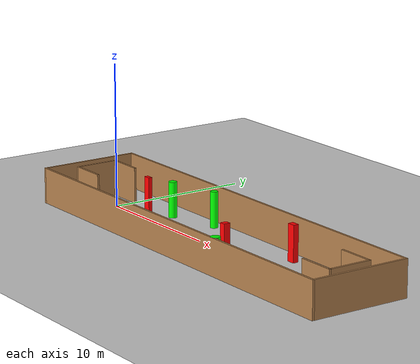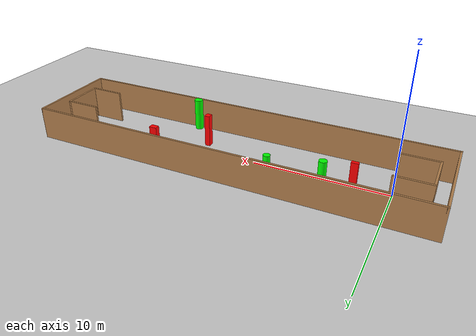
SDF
<sdf version="1.7">
 <world name="default">
  <light name="sun" type="directional">
   <pose>0 0 10 0 -0 0</pose>
   <diffuse>0.8 0.8 0.8 1</diffuse>
   <specular>0.2 0.2 0.2 1</specular>
   <attenuation>
    <range>1000</range>
    <constant>0.9</constant>
    <linear>0.01</linear>
    <quadratic>0.001</quadratic>
   </attenuation>
   <direction>-0.5 0.1 -0.9</direction>
   <spot><inner_angle>0</inner_angle><outer_angle>0</outer_angle><falloff>0</falloff></spot>
  </light>
  <model name="ground_plane">
   <static>1</static>
   <link name="link">
    <collision name="collision">
     <geometry><plane><normal>0 0 1</normal><size>100 100</size></plane></geometry>
     <surface>
      <contact><collide_bitmask>65535</collide_bitmask></contact>
      <friction><ode><mu>100</mu><mu2>50</mu2></ode></friction>
     </surface>
    </collision>
    <visual name="visual">
     <cast_shadows>0</cast_shadows>
     <geometry><plane><normal>0 0 1</normal><size>100 100</size></plane></geometry>
     <material>
      <script><uri>file://media/materials/scripts/gazebo.material</uri><name>Gazebo/Grey</name></script>
     </material>
    </visual>
   </link>
  </model>
  <gravity>0 0 -9.8</gravity>
  <magnetic_field>6e-06 2.3e-05 -4.2e-05</magnetic_field>
  <atmosphere type="adiabatic"/>
  <physics type="ode">
   <max_step_size>0.001</max_step_size>
   <real_time_factor>1</real_time_factor>
   <real_time_update_rate>1000</real_time_update_rate>
  </physics>
  <scene><ambient>0.4 0.4 0.4 1</ambient><background>0.7 0.7 0.7 1</background><shadows>1</shadows></scene>
  <spherical_coordinates>
   <surface_model>EARTH_WGS84</surface_model>
   <latitude_deg>0</latitude_deg>
   <longitude_deg>0</longitude_deg>
   <elevation>0</elevation>
   <heading_deg>0</heading_deg>
  </spherical_coordinates>
  <model name="my_base_walls">
   <link name="Wall_0">
    <collision name="Wall_0_Collision">
     <geometry><box><size>7.15 0.15 2.5</size></box></geometry>
     <pose>0 0 1.25 0 -0 0</pose>
    </collision>
    <visual name="Wall_0_Visual">
     <pose>0 0 1.25 0 -0 0</pose>
     <geometry><box><size>7.15 0.15 2.5</size></box></geometry>
     <material>
      <script><uri>file://media/materials/scripts/gazebo.material</uri><name>Gazebo/Wood</name></script>
      <ambient>1 1 1 1</ambient>
     </material>
     <meta><layer>0</layer></meta>
    </visual>
    <pose>-15 0 0 0 -0 1.5708</pose>
   </link>
   <link name="Wall_10">
    <collision name="Wall_10_Collision">
     <geometry><box><size>2.65 0.15 2.5</size></box></geometry>
     <pose>0 0 1.25 0 -0 0</pose>
    </collision>
    <visual name="Wall_10_Visual">
     <pose>0 0 1.25 0 -0 0</pose>
     <geometry><box><size>2.65 0.15 2.5</size></box></geometry>
     <material>
      <script><uri>file://media/materials/scripts/gazebo.material</uri><name>Gazebo/Wood</name></script>
      <ambient>1 1 1 1</ambient>
     </material>
     <meta><layer>0</layer></meta>
    </visual>
    <pose>-12.75 -1.5 0 0 -0 0</pose>
   </link>
   <link name="Wall_12">
    <collision name="Wall_12_Collision">
     <geometry><box><size>2.65 0.15 2.5</size></box></geometry>
     <pose>0 0 1.25 0 -0 0</pose>
    </collision>
    <visual name="Wall_12_Visual">
     <pose>0 0 1.25 0 -0 0</pose>
     <geometry><box><size>2.65 0.15 2.5</size></box></geometry>
     <material>
      <script><uri>file://media/materials/scripts/gazebo.material</uri><name>Gazebo/Wood</name></script>
      <ambient>1 1 1 1</ambient>
     </material>
     <meta><layer>0</layer></meta>
    </visual>
    <pose>-12.75 1.5 0 0 -0 0</pose>
   </link>
   <link name="Wall_14">
    <collision name="Wall_14_Collision">
     <geometry><box><size>3.15 0.15 2.5</size></box></geometry>
     <pose>0 0 1.25 0 -0 0</pose>
    </collision>
    <visual name="Wall_14_Visual">
     <pose>0 0 1.25 0 -0 0</pose>
     <geometry><box><size>3.15 0.15 2.5</size></box></geometry>
     <material>
      <script><uri>file://media/materials/scripts/gazebo.material</uri><name>Gazebo/Wood</name></script>
      <ambient>1 1 1 1</ambient>
     </material>
     <meta><layer>0</layer></meta>
    </visual>
    <pose>14 0 0 0 -0 -1.5708</pose>
   </link>
   <link name="Wall_15">
    <collision name="Wall_15_Collision">
     <geometry><box><size>2.65 0.15 2.5</size></box></geometry>
     <pose>0 0 1.25 0 -0 0</pose>
    </collision>
    <visual name="Wall_15_Visual">
     <pose>0 0 1.25 0 -0 0</pose>
     <geometry><box><size>2.65 0.15 2.5</size></box></geometry>
     <material>
      <script><uri>file://media/materials/scripts/gazebo.material</uri><name>Gazebo/Wood</name></script>
      <ambient>1 1 1 1</ambient>
     </material>
     <meta><layer>0</layer></meta>
    </visual>
    <pose>12.75 -1.5 0 0 -0 3.14159</pose>
   </link>
   <link name="Wall_17">
    <collision name="Wall_17_Collision">
     <geometry><box><size>2.65 0.15 2.5</size></box></geometry>
     <pose>0 0 1.25 0 -0 0</pose>
    </collision>
    <visual name="Wall_17_Visual">
     <pose>0 0 1.25 0 -0 0</pose>
     <geometry><box><size>2.65 0.15 2.5</size></box></geometry>
     <material>
      <script><uri>file://media/materials/scripts/gazebo.material</uri><name>Gazebo/Wood</name></script>
      <ambient>1 1 1 1</ambient>
     </material>
     <meta><layer>0</layer></meta>
    </visual>
    <pose>12.75 1.5 0 0 -0 3.14159</pose>
   </link>
   <link name="Wall_2">
    <collision name="Wall_2_Collision">
     <geometry><box><size>30.15 0.15 2.5</size></box></geometry>
     <pose>0 0 1.25 0 -0 0</pose>
    </collision>
    <visual name="Wall_2_Visual">
     <pose>0 0 1.25 0 -0 0</pose>
     <geometry><box><size>30.15 0.15 2.5</size></box></geometry>
     <material>
      <script><uri>file://media/materials/scripts/gazebo.material</uri><name>Gazebo/Wood</name></script>
      <ambient>1 1 1 1</ambient>
     </material>
     <meta><layer>0</layer></meta>
    </visual>
    <pose>-0 -3.5 0 0 -0 0</pose>
   </link>
   <link name="Wall_4">
    <collision name="Wall_4_Collision">
     <geometry><box><size>30.15 0.15 2.5</size></box></geometry>
     <pose>0 0 1.25 0 -0 0</pose>
    </collision>
    <visual name="Wall_4_Visual">
     <pose>0 0 1.25 0 -0 0</pose>
     <geometry><box><size>30.15 0.15 2.5</size></box></geometry>
     <material>
      <script><uri>file://media/materials/scripts/gazebo.material</uri><name>Gazebo/Wood</name></script>
      <ambient>1 1 1 1</ambient>
     </material>
     <meta><layer>0</layer></meta>
    </visual>
    <pose>-0 3.5 0 0 -0 0</pose>
   </link>
   <link name="Wall_6">
    <collision name="Wall_6_Collision">
     <geometry><box><size>7.15 0.15 2.5</size></box></geometry>
     <pose>0 0 1.25 0 -0 0</pose>
    </collision>
    <visual name="Wall_6_Visual">
     <pose>0 0 1.25 0 -0 0</pose>
     <geometry><box><size>7.15 0.15 2.5</size></box></geometry>
     <material>
      <script><uri>file://media/materials/scripts/gazebo.material</uri><name>Gazebo/Wood</name></script>
      <ambient>1 1 1 1</ambient>
     </material>
     <meta><layer>0</layer></meta>
    </visual>
    <pose>15 0 0 0 -0 -1.5708</pose>
   </link>
   <link name="Wall_9">
    <collision name="Wall_9_Collision">
     <geometry><box><size>3.15 0.15 2.5</size></box></geometry>
     <pose>0 0 1.25 0 -0 0</pose>
    </collision>
    <visual name="Wall_9_Visual">
     <pose>0 0 1.25 0 -0 0</pose>
     <geometry><box><size>3.15 0.15 2.5</size></box></geometry>
     <material>
      <script><uri>file://media/materials/scripts/gazebo.material</uri><name>Gazebo/Wood</name></script>
      <ambient>1 1 1 1</ambient>
     </material>
     <meta><layer>0</layer></meta>
    </visual>
    <pose>-14 0 0 0 -0 -1.5708</pose>
   </link>
   <static>1</static>
   <pose>11.5 0 0 0 -0 0</pose>
  </model>
  <model name="cylinder1">
   <static>1</static>
   <link name="link">
    <inertial>
     <mass>1</mass>
     <inertia><ixx>0.5</ixx><ixy>0</ixy><ixz>0</ixz><iyy>0.5</iyy><iyz>0</iyz><izz>1</izz></inertia>
    </inertial>
    <collision name="collision">
     <geometry><cylinder><radius>0.28906559945353116</radius><length>2.5</length></cylinder></geometry>
    </collision>
    <visual name="visual">
     <geometry><cylinder><radius>0.28906559945353116</radius><length>2.5</length></cylinder></geometry>
     <material>
      <ambient>0 1 0 1</ambient>
      <diffuse>0 1 0 1</diffuse>
      <specular>0.1 0.1 0.1 1</specular>
      <emissive>0 0 0 0</emissive>
     </material>
    </visual>
   </link>
   <pose>4.413617910916653 1.6794893977519543 1.25 0 0 0</pose>
  </model>
  <model name="cylinder2">
   <static>1</static>
   <link name="link">
    <inertial>
     <mass>1</mass>
     <inertia><ixx>0.5</ixx><ixy>0</ixy><ixz>0</ixz><iyy>0.5</iyy><iyz>0</iyz><izz>1</izz></inertia>
    </inertial>
    <collision name="collision">
     <geometry><cylinder><radius>0.3253896026122839</radius><length>2.5</length></cylinder></geometry>
    </collision>
    <visual name="visual">
     <geometry><cylinder><radius>0.3253896026122839</radius><length>2.5</length></cylinder></geometry>
     <material>
      <ambient>0 1 0 1</ambient>
      <diffuse>0 1 0 1</diffuse>
      <specular>0.1 0.1 0.1 1</specular>
      <emissive>0 0 0 0</emissive>
     </material>
    </visual>
   </link>
   <pose>16.394259802906497 -3.2507347625095706 1.25 0 0 0</pose>
  </model>
  <model name="cylinder3">
   <static>1</static>
   <link name="link">
    <inertial>
     <mass>1</mass>
     <inertia><ixx>0.5</ixx><ixy>0</ixy><ixz>0</ixz><iyy>0.5</iyy><iyz>0</iyz><izz>1</izz></inertia>
    </inertial>
    <collision name="collision">
     <geometry><cylinder><radius>0.252409491979296</radius><length>2.5</length></cylinder></geometry>
    </collision>
    <visual name="visual">
     <geometry><cylinder><radius>0.252409491979296</radius><length>2.5</length></cylinder></geometry>
     <material>
      <ambient>0 1 0 1</ambient>
      <diffuse>0 1 0 1</diffuse>
      <specular>0.1 0.1 0.1 1</specular>
      <emissive>0 0 0 0</emissive>
     </material>
    </visual>
   </link>
   <pose>7.974890650943445 2.584355551057599 1.25 0 0 0</pose>
  </model>
  <model name="box1">
   <static>1</static>
   <link name="link">
    <inertial>
     <mass>1</mass>
     <inertia><ixx>0.083</ixx><ixy>0</ixy><ixz>0</ixz><iyy>0.083</iyy><iyz>0</iyz><izz>0.083</izz></inertia>
    </inertial>
    <collision name="collision">
     <geometry><box><size>0.39706902269543576 0.4592312362141894 2.5</size></box></geometry>
    </collision>
    <visual name="visual">
     <geometry><box><size>0.39706902269543576 0.4592312362141894 2.5</size></box></geometry>
     <material>
      <ambient>1 0 0 1</ambient>
      <diffuse>1 0 0 1</diffuse>
      <specular>0.1 0.1 0.1 1</specular>
      <emissive>0 0 0 0</emissive>
     </material>
    </visual>
    <sensor name="my_contact" type="contact">
     <contact><collision>box_collision</collision><topic>__default_topic__</topic></contact>
    </sensor>
   </link>
   <pose>14.320270424063523 -1.0358573829691822 1.25 0 0 0</pose>
  </model>
  <model name="box2">
   <static>1</static>
   <link name="link">
    <inertial>
     <mass>1</mass>
     <inertia><ixx>0.083</ixx><ixy>0</ixy><ixz>0</ixz><iyy>0.083</iyy><iyz>0</iyz><izz>0.083</izz></inertia>
    </inertial>
    <collision name="collision">
     <geometry><box><size>0.5058491737199177 0.27072940007415625 2.5</size></box></geometry>
    </collision>
    <visual name="visual">
     <geometry><box><size>0.5058491737199177 0.27072940007415625 2.5</size></box></geometry>
     <material>
      <ambient>1 0 0 1</ambient>
      <diffuse>1 0 0 1</diffuse>
      <specular>0.1 0.1 0.1 1</specular>
      <emissive>0 0 0 0</emissive>
     </material>
    </visual>
    <sensor name="my_contact" type="contact">
     <contact><collision>box_collision</collision><topic>__default_topic__</topic></contact>
    </sensor>
   </link>
   <pose>2.489013491737321 0.979291945092343 1.25 0 0 0</pose>
  </model>
  <model name="box3">
   <static>1</static>
   <link name="link">
    <inertial>
     <mass>1</mass>
     <inertia><ixx>0.083</ixx><ixy>0</ixy><ixz>0</ixz><iyy>0.083</iyy><iyz>0</iyz><izz>0.083</izz></inertia>
    </inertial>
    <collision name="collision">
     <geometry><box><size>0.5651327247836415 0.38956661025564304 2.5</size></box></geometry>
    </collision>
    <visual name="visual">
     <geometry><box><size>0.5651327247836415 0.38956661025564304 2.5</size></box></geometry>
     <material>
      <ambient>1 0 0 1</ambient>
      <diffuse>1 0 0 1</diffuse>
      <specular>0.1 0.1 0.1 1</specular>
      <emissive>0 0 0 0</emissive>
     </material>
    </visual>
    <sensor name="my_contact" type="contact">
     <contact><collision>box_collision</collision><topic>__default_topic__</topic></contact>
    </sensor>
   </link>
   <pose>16.95595636688271 2.336684157746765 1.25 0 0 0</pose>
  </model>
 </world>
</sdf>
